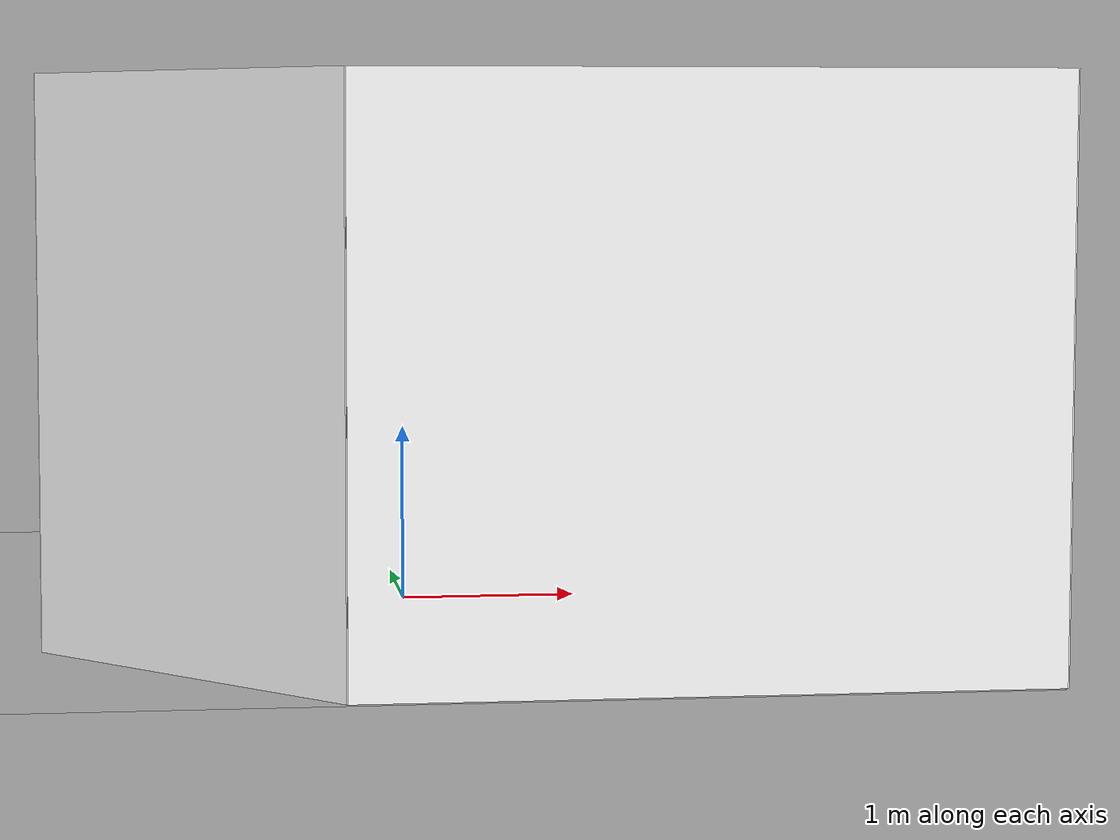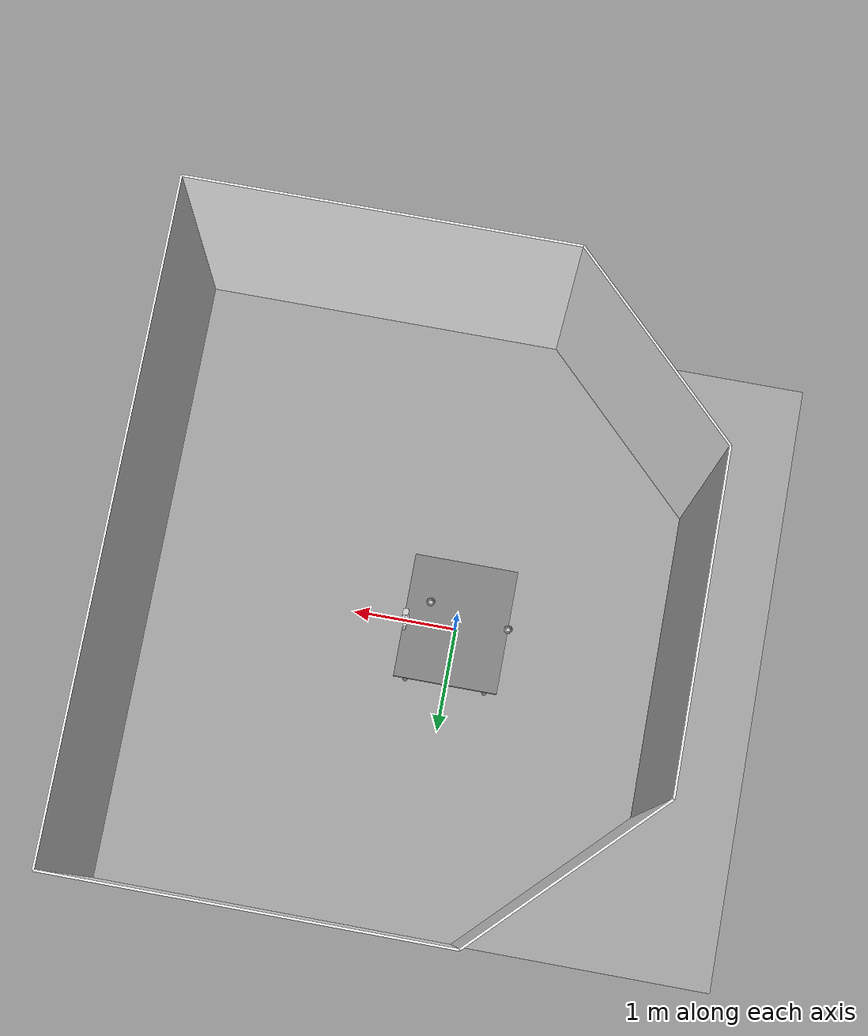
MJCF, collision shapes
<?xml version='1.0' encoding='utf-8'?>
<mujoco model="table_arena">
  <asset>
    <texture builtin="gradient" height="256" rgb1=".9 .9 1." rgb2=".2 .3 .4" type="skybox" width="256" />
    <material name="floorplane_mat" specular="0" shininess="0" reflectance="0.1" rgba="0.8 0.8 0.8 1" />
    <material name="wall_mat" specular="0" shininess="0" reflectance="0" rgba="0.95 0.95 0.95 1" />
    <material name="table_top_mat" specular="0.1" shininess="0.1" reflectance="0.2" rgba="0.7 0.7 0.7 1" />
    <material name="table_leg_mat" specular="0.8" shininess="0.8" reflectance="0.5" rgba="0.4 0.4 0.4 1" />
    <texture file="../libero_assets/stable_scanned_objects/white_bowl/texture.png" name="object_1_tex-model" type="2d" />
    <material name="object_1_model" reflectance="0.5" texrepeat="1 1" texture="object_1_tex-model" texuniform="false" />
    <mesh file="../libero_assets/stable_scanned_objects/white_bowl/visual/model_vis.msh" name="object_1_model_vis" scale="0.5 0.5 0.5" />
    <texture file="../libero_assets/stable_scanned_objects/white_bowl/texture.png" name="object_2_tex-model" type="2d" />
    <material name="object_2_model" reflectance="0.5" texrepeat="1 1" texture="object_2_tex-model" texuniform="false" />
    <mesh file="../libero_assets/stable_scanned_objects/white_bowl/visual/model_vis.msh" name="object_2_model_vis" scale="0.5 0.5 0.5" />
    <texture file="../libero_assets/stable_hope_objects/ketchup/texture_map.png" name="object_3_tex-textured" type="2d" />
    <material name="object_3_textured" reflectance="0.5" texrepeat="1 1" texture="object_3_tex-textured" texuniform="false" />
    <mesh file="../libero_assets/stable_hope_objects/ketchup/visual/textured_vis.msh" name="object_3_textured_vis" scale="0.01 0.01 0.01" />
    <texture file="../libero_assets/stable_hope_objects/ketchup/texture_map.png" name="object_4_tex-textured" type="2d" />
    <material name="object_4_textured" reflectance="0.5" texrepeat="1 1" texture="object_4_tex-textured" texuniform="false" />
    <mesh file="../libero_assets/stable_hope_objects/ketchup/visual/textured_vis.msh" name="object_4_textured_vis" scale="0.01 0.01 0.01" />
  </asset>
  <worldbody>
    <geom condim="3" group="1" material="floorplane_mat" name="floor" pos="0 0 0" size="3 3 .125" type="plane" />
    <geom pos="-1.25 2.25 1.5" quat="0.6532815 0.6532815 0.2705981 0.2705981" size="1.06 1.5 0.01" type="box" conaffinity="0" contype="0" group="1" name="wall_leftcorner_visual" material="wall_mat" />
    <geom pos="-1.25 -2.25 1.5" quat="0.6532815 0.6532815 -0.2705981 -0.2705981" size="1.06 1.5 0.01" type="box" conaffinity="0" contype="0" group="1" name="wall_rightcorner_visual" material="wall_mat" />
    <geom pos="1.25 3 1.5" quat="0.7071 0.7071 0 0" size="1.75 1.5 0.01" type="box" conaffinity="0" contype="0" group="1" name="wall_left_visual" material="wall_mat" />
    <geom pos="1.25 -3 1.5" quat="0.7071 -0.7071 0 0" size="1.75 1.5 0.01" type="box" conaffinity="0" contype="0" group="1" name="wall_right_visual" material="wall_mat" />
    <geom pos="-2 0 1.5" quat="0.5 0.5 0.5 0.5" size="1.5 1.5 0.01" type="box" conaffinity="0" contype="0" group="1" name="wall_rear_visual" material="wall_mat" />
    <geom pos="3 0 1.5" quat="0.5 0.5 -0.5 -0.5" size="3 1.5 0.01" type="box" conaffinity="0" contype="0" group="1" name="wall_front_visual" material="wall_mat" />
    <body name="table" pos="0 0 0.4">
      <geom pos="0 0 0" size="0.5 0.6 0.025" type="box" group="0" name="table_collision" friction="1 0.005 0.0001" />
      <geom name="table_visual" size="0.5 0.6 0.025" type="box" contype="0" conaffinity="0" group="1" material="table_top_mat" />
      <geom name="table_leg1_visual" size="0.025 0.4375" pos="0.4 0.5 -0.4375" type="cylinder" contype="0" conaffinity="0" group="1" material="table_leg_mat" />
      <geom name="table_leg2_visual" size="0.025 0.4375" pos="-0.4 0.5 -0.4375" type="cylinder" contype="0" conaffinity="0" group="1" material="table_leg_mat" />
      <geom name="table_leg3_visual" size="0.025 0.4375" pos="-0.4 -0.5 -0.4375" type="cylinder" contype="0" conaffinity="0" group="1" material="table_leg_mat" />
      <geom name="table_leg4_visual" size="0.025 0.4375" pos="0.4 -0.5 -0.4375" type="cylinder" contype="0" conaffinity="0" group="1" material="table_leg_mat" />
    </body>
    <light pos="1.0 1.0 1.5" dir="-0.2 -0.2 -1" specular="0.3 0.3 0.3" directional="true" castshadow="false" />
    <camera mode="fixed" name="frontview" pos="1.6 0 1.45" quat="0.56 0.43 0.43 0.56" />
    <camera mode="fixed" name="birdview" pos="-0.2 0 3.0" quat="0.7071 0 0 0.7071" />
    <camera mode="fixed" name="agentview" pos="0.5 0 1.35" quat="0.653 0.271 0.271 0.653" />
    <camera mode="fixed" name="sideview" pos="-0.05651774593317116 1.2761224129427358 1.4879572214102434" quat="0.009905065491771751 0.006877963156909582 0.5912228352893879 0.806418094001364" />
    <body name="object_1_instance" pos="-0.5008460274930173 -0.025743497362280918 0.44500000000000006">
      <freejoint />
      <geom solimp="0.998 0.998 0.001" solref="0.001 1" density="100" friction="0.95 0.3 0.1" type="mesh" mesh="object_1_model_vis" conaffinity="0" contype="0" group="1" material="object_1_model" />
      <geom solimp="0.998 0.998 0.001" solref="0.001 1" density="100" friction="0.95 0.3 0.1" type="box" pos="0.00000 0.00009 0.00240" quat="0.70711 0.00000 0.70711 0.00000" size="0.00184 0.01653 0.01728" group="0" rgba="0.8 0.8 0.8 0.3" />
      <geom solimp="0.998 0.998 0.001" solref="0.001 1" density="100" friction="0.95 0.3 0.1" type="box" pos="-0.00007 0.02401 0.00671" quat="0.60990 -0.35780 -0.35780 -0.60990" size="0.00051 0.00709 0.00848" group="0" rgba="0.8 0.8 0.8 0.3" />
      <geom solimp="0.998 0.998 0.001" solref="0.001 1" density="100" friction="0.95 0.3 0.1" type="box" pos="-0.01049 0.02155 0.00685" quat="0.45959 -0.42672 0.26704 0.73169" size="0.00051 0.00709 0.00848" group="0" rgba="0.8 0.8 0.8 0.3" />
      <geom solimp="0.998 0.998 0.001" solref="0.001 1" density="100" friction="0.95 0.3 0.1" type="box" pos="-0.01860 0.01506 0.00697" quat="0.29172 -0.47299 0.16619 0.81459" size="0.00051 0.00709 0.00848" group="0" rgba="0.8 0.8 0.8 0.3" />
      <geom solimp="0.998 0.998 0.001" solref="0.001 1" density="100" friction="0.95 0.3 0.1" type="box" pos="-0.02323 0.00567 0.00703" quat="0.10855 -0.49698 0.05658 0.85908" size="0.00051 0.00709 0.00848" group="0" rgba="0.8 0.8 0.8 0.3" />
      <geom solimp="0.998 0.998 0.001" solref="0.001 1" density="100" friction="0.95 0.3 0.1" type="box" pos="-0.02348 -0.00453 0.00703" quat="0.49761 -0.07722 0.86246 0.05074" size="0.00051 0.00709 0.00848" group="0" rgba="0.8 0.8 0.8 0.3" />
      <geom solimp="0.998 0.998 0.001" solref="0.001 1" density="100" friction="0.95 0.3 0.1" type="box" pos="-0.01923 -0.01422 0.00703" quat="0.47408 -0.26597 0.82406 0.15949" size="0.00051 0.00709 0.00848" group="0" rgba="0.8 0.8 0.8 0.3" />
      <geom solimp="0.998 0.998 0.001" solref="0.001 1" density="100" friction="0.95 0.3 0.1" type="box" pos="-0.01112 -0.02117 0.00703" quat="0.42646 -0.44336 0.74380 0.26138" size="0.00051 0.00709 0.00848" group="0" rgba="0.8 0.8 0.8 0.3" />
      <geom solimp="0.998 0.998 0.001" solref="0.001 1" density="100" friction="0.95 0.3 0.1" type="box" pos="-0.00087 -0.02390 0.00703" quat="0.59728 0.35787 0.34946 -0.62695" size="0.00051 0.00709 0.00848" group="0" rgba="0.8 0.8 0.8 0.3" />
      <geom solimp="0.998 0.998 0.001" solref="0.001 1" density="100" friction="0.95 0.3 0.1" type="box" pos="0.00965 -0.02188 0.00703" quat="0.72249 0.27055 0.42070 -0.47731" size="0.00051 0.00709 0.00848" group="0" rgba="0.8 0.8 0.8 0.3" />
      <geom solimp="0.998 0.998 0.001" solref="0.001 1" density="100" friction="0.95 0.3 0.1" type="box" pos="0.01802 -0.01572 0.00703" quat="0.17267 -0.80894 0.30891 0.46945" size="0.00051 0.00709 0.00848" group="0" rgba="0.8 0.8 0.8 0.3" />
      <geom solimp="0.998 0.998 0.001" solref="0.001 1" density="100" friction="0.95 0.3 0.1" type="box" pos="0.02302 -0.00650 0.00703" quat="0.85700 0.06550 0.49588 -0.12397" size="0.00051 0.00709 0.00848" group="0" rgba="0.8 0.8 0.8 0.3" />
      <geom solimp="0.998 0.998 0.001" solref="0.001 1" density="100" friction="0.95 0.3 0.1" type="box" pos="0.02302 -0.00650 0.00703" quat="0.85700 0.06550 0.49588 -0.12397" size="0.00051 0.00709 0.00848" group="0" rgba="0.8 0.8 0.8 0.3" />
      <geom solimp="0.998 0.998 0.001" solref="0.001 1" density="100" friction="0.95 0.3 0.1" type="box" pos="0.02391 0.00015 0.00703" quat="0.86591 -0.00473 0.50017 -0.00248" size="0.00051 0.00709 0.00848" group="0" rgba="0.8 0.8 0.8 0.3" />
      <geom solimp="0.998 0.998 0.001" solref="0.001 1" density="100" friction="0.95 0.3 0.1" type="box" pos="0.02169 0.01008 0.00703" quat="0.84663 -0.11101 0.48771 0.18175" size="0.00051 0.00709 0.00848" group="0" rgba="0.8 0.8 0.8 0.3" />
      <geom solimp="0.998 0.998 0.001" solref="0.001 1" density="100" friction="0.95 0.3 0.1" type="box" pos="0.01540 0.01830 0.00703" quat="0.21392 0.78724 0.36065 -0.45213" size="0.00051 0.00709 0.00848" group="0" rgba="0.8 0.8 0.8 0.3" />
      <geom solimp="0.998 0.998 0.001" solref="0.001 1" density="100" friction="0.95 0.3 0.1" type="box" pos="0.00826 0.02244 0.00703" quat="0.71324 -0.28870 0.40847 0.49101" size="0.00051 0.00709 0.00848" group="0" rgba="0.8 0.8 0.8 0.3" />
      <geom solimp="0.998 0.998 0.001" solref="0.001 1" density="100" friction="0.95 0.3 0.1" type="box" pos="-0.00007 0.03575 0.02264" quat="0.10134 0.69981 0.69981 -0.10134" size="0.00096 0.00709 0.01266" group="0" rgba="0.8 0.8 0.8 0.3" />
      <geom solimp="0.998 0.998 0.001" solref="0.001 1" density="100" friction="0.95 0.3 0.1" type="box" pos="-0.01308 0.03327 0.02264" quat="0.55811 -0.11836 0.08082 0.81730" size="0.00096 0.00709 0.01266" group="0" rgba="0.8 0.8 0.8 0.3" />
      <geom solimp="0.998 0.998 0.001" solref="0.001 1" density="100" friction="0.95 0.3 0.1" type="box" pos="-0.02408 0.02642 0.02264" quat="0.13104 0.40078 0.90490 -0.05804" size="0.00096 0.00709 0.01266" group="0" rgba="0.8 0.8 0.8 0.3" />
      <geom solimp="0.998 0.998 0.001" solref="0.001 1" density="100" friction="0.95 0.3 0.1" type="box" pos="-0.03197 0.01599 0.02264" quat="0.13945 0.22841 0.96296 -0.03308" size="0.00096 0.00709 0.01266" group="0" rgba="0.8 0.8 0.8 0.3" />
      <geom solimp="0.998 0.998 0.001" solref="0.001 1" density="100" friction="0.95 0.3 0.1" type="box" pos="-0.03558 0.00349 0.02264" quat="0.04942 -0.14314 0.00715 0.98844" size="0.00096 0.00709 0.01266" group="0" rgba="0.8 0.8 0.8 0.3" />
      <geom solimp="0.998 0.998 0.001" solref="0.001 1" density="100" friction="0.95 0.3 0.1" type="box" pos="-0.03456 -0.00914 0.02264" quat="0.14214 -0.12653 0.98155 0.01832" size="0.00096 0.00709 0.01266" group="0" rgba="0.8 0.8 0.8 0.3" />
      <geom solimp="0.998 0.998 0.001" solref="0.001 1" density="100" friction="0.95 0.3 0.1" type="box" pos="-0.02902 -0.02087 0.02264" quat="0.30259 0.13646 0.04382 -0.94228" size="0.00096 0.00709 0.01266" group="0" rgba="0.8 0.8 0.8 0.3" />
      <geom solimp="0.998 0.998 0.001" solref="0.001 1" density="100" friction="0.95 0.3 0.1" type="box" pos="-0.01954 -0.02993 0.02264" quat="0.12610 -0.47028 0.87081 0.06810" size="0.00096 0.00709 0.01266" group="0" rgba="0.8 0.8 0.8 0.3" />
      <geom solimp="0.998 0.998 0.001" solref="0.001 1" density="100" friction="0.95 0.3 0.1" type="box" pos="-0.00766 -0.03492 0.02264" quat="0.61947 0.11177 0.08971 -0.77183" size="0.00096 0.00709 0.01266" group="0" rgba="0.8 0.8 0.8 0.3" />
      <geom solimp="0.998 0.998 0.001" solref="0.001 1" density="100" friction="0.95 0.3 0.1" type="box" pos="0.00530 -0.03535 0.02264" quat="0.74921 0.09364 0.10849 -0.64664" size="0.00096 0.00709 0.01266" group="0" rgba="0.8 0.8 0.8 0.3" />
      <geom solimp="0.998 0.998 0.001" solref="0.001 1" density="100" friction="0.95 0.3 0.1" type="box" pos="0.01764 -0.03109 0.02264" quat="0.07226 -0.85468 0.49898 0.12377" size="0.00096 0.00709 0.01266" group="0" rgba="0.8 0.8 0.8 0.3" />
      <geom solimp="0.998 0.998 0.001" solref="0.001 1" density="100" friction="0.95 0.3 0.1" type="box" pos="0.02755 -0.02278 0.02264" quat="0.93084 0.04868 0.13480 -0.33615" size="0.00096 0.00709 0.01266" group="0" rgba="0.8 0.8 0.8 0.3" />
      <geom solimp="0.998 0.998 0.001" solref="0.001 1" density="100" friction="0.95 0.3 0.1" type="box" pos="0.03395 -0.01119 0.02264" quat="0.97700 0.02287 0.14148 -0.15791" size="0.00096 0.00709 0.01266" group="0" rgba="0.8 0.8 0.8 0.3" />
      <geom solimp="0.998 0.998 0.001" solref="0.001 1" density="100" friction="0.95 0.3 0.1" type="box" pos="0.03572 0.00140 0.02264" quat="0.00267 0.98951 0.01840 -0.14329" size="0.00096 0.00709 0.01266" group="0" rgba="0.8 0.8 0.8 0.3" />
      <geom solimp="0.998 0.998 0.001" solref="0.001 1" density="100" friction="0.95 0.3 0.1" type="box" pos="0.03572 0.00140 0.02264" quat="0.00267 0.98951 0.01840 -0.14329" size="0.00096 0.00709 0.01266" group="0" rgba="0.8 0.8 0.8 0.3" />
      <geom solimp="0.998 0.998 0.001" solref="0.001 1" density="100" friction="0.95 0.3 0.1" type="box" pos="0.03293 0.01390 0.02264" quat="0.02829 0.97021 0.19533 -0.14050" size="0.00096 0.00709 0.01266" group="0" rgba="0.8 0.8 0.8 0.3" />
      <geom solimp="0.998 0.998 0.001" solref="0.001 1" density="100" friction="0.95 0.3 0.1" type="box" pos="0.02592 0.02462 0.02264" quat="0.13315 0.36606 -0.91949 0.05301" size="0.00096 0.00709 0.01266" group="0" rgba="0.8 0.8 0.8 0.3" />
      <geom solimp="0.998 0.998 0.001" solref="0.001 1" density="100" friction="0.95 0.3 0.1" type="box" pos="0.01569 0.03212 0.02264" quat="0.83995 -0.07579 0.12163 0.52340" size="0.00096 0.00709 0.01266" group="0" rgba="0.8 0.8 0.8 0.3" />
      <geom solimp="0.998 0.998 0.001" solref="0.001 1" density="100" friction="0.95 0.3 0.1" type="box" pos="0.00801 0.03484 0.02264" quat="0.08915 0.77490 0.61562 -0.11222" size="0.00094 0.00337 0.01264" group="0" rgba="0.8 0.8 0.8 0.3" />
    </body>
    <body name="object_2_instance" pos="0.27445589652834834 -0.15642902036864503 0.44500000000000006">
      <freejoint />
      <geom solimp="0.998 0.998 0.001" solref="0.001 1" density="100" friction="0.95 0.3 0.1" type="mesh" mesh="object_2_model_vis" conaffinity="0" contype="0" group="1" material="object_2_model" />
      <geom solimp="0.998 0.998 0.001" solref="0.001 1" density="100" friction="0.95 0.3 0.1" type="box" pos="0.00000 0.00009 0.00240" quat="0.70711 0.00000 0.70711 0.00000" size="0.00184 0.01653 0.01728" group="0" rgba="0.8 0.8 0.8 0.3" />
      <geom solimp="0.998 0.998 0.001" solref="0.001 1" density="100" friction="0.95 0.3 0.1" type="box" pos="-0.00007 0.02401 0.00671" quat="0.60990 -0.35780 -0.35780 -0.60990" size="0.00051 0.00709 0.00848" group="0" rgba="0.8 0.8 0.8 0.3" />
      <geom solimp="0.998 0.998 0.001" solref="0.001 1" density="100" friction="0.95 0.3 0.1" type="box" pos="-0.01049 0.02155 0.00685" quat="0.45959 -0.42672 0.26704 0.73169" size="0.00051 0.00709 0.00848" group="0" rgba="0.8 0.8 0.8 0.3" />
      <geom solimp="0.998 0.998 0.001" solref="0.001 1" density="100" friction="0.95 0.3 0.1" type="box" pos="-0.01860 0.01506 0.00697" quat="0.29172 -0.47299 0.16619 0.81459" size="0.00051 0.00709 0.00848" group="0" rgba="0.8 0.8 0.8 0.3" />
      <geom solimp="0.998 0.998 0.001" solref="0.001 1" density="100" friction="0.95 0.3 0.1" type="box" pos="-0.02323 0.00567 0.00703" quat="0.10855 -0.49698 0.05658 0.85908" size="0.00051 0.00709 0.00848" group="0" rgba="0.8 0.8 0.8 0.3" />
      <geom solimp="0.998 0.998 0.001" solref="0.001 1" density="100" friction="0.95 0.3 0.1" type="box" pos="-0.02348 -0.00453 0.00703" quat="0.49761 -0.07722 0.86246 0.05074" size="0.00051 0.00709 0.00848" group="0" rgba="0.8 0.8 0.8 0.3" />
      <geom solimp="0.998 0.998 0.001" solref="0.001 1" density="100" friction="0.95 0.3 0.1" type="box" pos="-0.01923 -0.01422 0.00703" quat="0.47408 -0.26597 0.82406 0.15949" size="0.00051 0.00709 0.00848" group="0" rgba="0.8 0.8 0.8 0.3" />
      <geom solimp="0.998 0.998 0.001" solref="0.001 1" density="100" friction="0.95 0.3 0.1" type="box" pos="-0.01112 -0.02117 0.00703" quat="0.42646 -0.44336 0.74380 0.26138" size="0.00051 0.00709 0.00848" group="0" rgba="0.8 0.8 0.8 0.3" />
      <geom solimp="0.998 0.998 0.001" solref="0.001 1" density="100" friction="0.95 0.3 0.1" type="box" pos="-0.00087 -0.02390 0.00703" quat="0.59728 0.35787 0.34946 -0.62695" size="0.00051 0.00709 0.00848" group="0" rgba="0.8 0.8 0.8 0.3" />
      <geom solimp="0.998 0.998 0.001" solref="0.001 1" density="100" friction="0.95 0.3 0.1" type="box" pos="0.00965 -0.02188 0.00703" quat="0.72249 0.27055 0.42070 -0.47731" size="0.00051 0.00709 0.00848" group="0" rgba="0.8 0.8 0.8 0.3" />
      <geom solimp="0.998 0.998 0.001" solref="0.001 1" density="100" friction="0.95 0.3 0.1" type="box" pos="0.01802 -0.01572 0.00703" quat="0.17267 -0.80894 0.30891 0.46945" size="0.00051 0.00709 0.00848" group="0" rgba="0.8 0.8 0.8 0.3" />
      <geom solimp="0.998 0.998 0.001" solref="0.001 1" density="100" friction="0.95 0.3 0.1" type="box" pos="0.02302 -0.00650 0.00703" quat="0.85700 0.06550 0.49588 -0.12397" size="0.00051 0.00709 0.00848" group="0" rgba="0.8 0.8 0.8 0.3" />
      <geom solimp="0.998 0.998 0.001" solref="0.001 1" density="100" friction="0.95 0.3 0.1" type="box" pos="0.02302 -0.00650 0.00703" quat="0.85700 0.06550 0.49588 -0.12397" size="0.00051 0.00709 0.00848" group="0" rgba="0.8 0.8 0.8 0.3" />
      <geom solimp="0.998 0.998 0.001" solref="0.001 1" density="100" friction="0.95 0.3 0.1" type="box" pos="0.02391 0.00015 0.00703" quat="0.86591 -0.00473 0.50017 -0.00248" size="0.00051 0.00709 0.00848" group="0" rgba="0.8 0.8 0.8 0.3" />
      <geom solimp="0.998 0.998 0.001" solref="0.001 1" density="100" friction="0.95 0.3 0.1" type="box" pos="0.02169 0.01008 0.00703" quat="0.84663 -0.11101 0.48771 0.18175" size="0.00051 0.00709 0.00848" group="0" rgba="0.8 0.8 0.8 0.3" />
      <geom solimp="0.998 0.998 0.001" solref="0.001 1" density="100" friction="0.95 0.3 0.1" type="box" pos="0.01540 0.01830 0.00703" quat="0.21392 0.78724 0.36065 -0.45213" size="0.00051 0.00709 0.00848" group="0" rgba="0.8 0.8 0.8 0.3" />
      <geom solimp="0.998 0.998 0.001" solref="0.001 1" density="100" friction="0.95 0.3 0.1" type="box" pos="0.00826 0.02244 0.00703" quat="0.71324 -0.28870 0.40847 0.49101" size="0.00051 0.00709 0.00848" group="0" rgba="0.8 0.8 0.8 0.3" />
      <geom solimp="0.998 0.998 0.001" solref="0.001 1" density="100" friction="0.95 0.3 0.1" type="box" pos="-0.00007 0.03575 0.02264" quat="0.10134 0.69981 0.69981 -0.10134" size="0.00096 0.00709 0.01266" group="0" rgba="0.8 0.8 0.8 0.3" />
      <geom solimp="0.998 0.998 0.001" solref="0.001 1" density="100" friction="0.95 0.3 0.1" type="box" pos="-0.01308 0.03327 0.02264" quat="0.55811 -0.11836 0.08082 0.81730" size="0.00096 0.00709 0.01266" group="0" rgba="0.8 0.8 0.8 0.3" />
      <geom solimp="0.998 0.998 0.001" solref="0.001 1" density="100" friction="0.95 0.3 0.1" type="box" pos="-0.02408 0.02642 0.02264" quat="0.13104 0.40078 0.90490 -0.05804" size="0.00096 0.00709 0.01266" group="0" rgba="0.8 0.8 0.8 0.3" />
      <geom solimp="0.998 0.998 0.001" solref="0.001 1" density="100" friction="0.95 0.3 0.1" type="box" pos="-0.03197 0.01599 0.02264" quat="0.13945 0.22841 0.96296 -0.03308" size="0.00096 0.00709 0.01266" group="0" rgba="0.8 0.8 0.8 0.3" />
      <geom solimp="0.998 0.998 0.001" solref="0.001 1" density="100" friction="0.95 0.3 0.1" type="box" pos="-0.03558 0.00349 0.02264" quat="0.04942 -0.14314 0.00715 0.98844" size="0.00096 0.00709 0.01266" group="0" rgba="0.8 0.8 0.8 0.3" />
      <geom solimp="0.998 0.998 0.001" solref="0.001 1" density="100" friction="0.95 0.3 0.1" type="box" pos="-0.03456 -0.00914 0.02264" quat="0.14214 -0.12653 0.98155 0.01832" size="0.00096 0.00709 0.01266" group="0" rgba="0.8 0.8 0.8 0.3" />
      <geom solimp="0.998 0.998 0.001" solref="0.001 1" density="100" friction="0.95 0.3 0.1" type="box" pos="-0.02902 -0.02087 0.02264" quat="0.30259 0.13646 0.04382 -0.94228" size="0.00096 0.00709 0.01266" group="0" rgba="0.8 0.8 0.8 0.3" />
      <geom solimp="0.998 0.998 0.001" solref="0.001 1" density="100" friction="0.95 0.3 0.1" type="box" pos="-0.01954 -0.02993 0.02264" quat="0.12610 -0.47028 0.87081 0.06810" size="0.00096 0.00709 0.01266" group="0" rgba="0.8 0.8 0.8 0.3" />
      <geom solimp="0.998 0.998 0.001" solref="0.001 1" density="100" friction="0.95 0.3 0.1" type="box" pos="-0.00766 -0.03492 0.02264" quat="0.61947 0.11177 0.08971 -0.77183" size="0.00096 0.00709 0.01266" group="0" rgba="0.8 0.8 0.8 0.3" />
      <geom solimp="0.998 0.998 0.001" solref="0.001 1" density="100" friction="0.95 0.3 0.1" type="box" pos="0.00530 -0.03535 0.02264" quat="0.74921 0.09364 0.10849 -0.64664" size="0.00096 0.00709 0.01266" group="0" rgba="0.8 0.8 0.8 0.3" />
      <geom solimp="0.998 0.998 0.001" solref="0.001 1" density="100" friction="0.95 0.3 0.1" type="box" pos="0.01764 -0.03109 0.02264" quat="0.07226 -0.85468 0.49898 0.12377" size="0.00096 0.00709 0.01266" group="0" rgba="0.8 0.8 0.8 0.3" />
      <geom solimp="0.998 0.998 0.001" solref="0.001 1" density="100" friction="0.95 0.3 0.1" type="box" pos="0.02755 -0.02278 0.02264" quat="0.93084 0.04868 0.13480 -0.33615" size="0.00096 0.00709 0.01266" group="0" rgba="0.8 0.8 0.8 0.3" />
      <geom solimp="0.998 0.998 0.001" solref="0.001 1" density="100" friction="0.95 0.3 0.1" type="box" pos="0.03395 -0.01119 0.02264" quat="0.97700 0.02287 0.14148 -0.15791" size="0.00096 0.00709 0.01266" group="0" rgba="0.8 0.8 0.8 0.3" />
      <geom solimp="0.998 0.998 0.001" solref="0.001 1" density="100" friction="0.95 0.3 0.1" type="box" pos="0.03572 0.00140 0.02264" quat="0.00267 0.98951 0.01840 -0.14329" size="0.00096 0.00709 0.01266" group="0" rgba="0.8 0.8 0.8 0.3" />
      <geom solimp="0.998 0.998 0.001" solref="0.001 1" density="100" friction="0.95 0.3 0.1" type="box" pos="0.03572 0.00140 0.02264" quat="0.00267 0.98951 0.01840 -0.14329" size="0.00096 0.00709 0.01266" group="0" rgba="0.8 0.8 0.8 0.3" />
      <geom solimp="0.998 0.998 0.001" solref="0.001 1" density="100" friction="0.95 0.3 0.1" type="box" pos="0.03293 0.01390 0.02264" quat="0.02829 0.97021 0.19533 -0.14050" size="0.00096 0.00709 0.01266" group="0" rgba="0.8 0.8 0.8 0.3" />
      <geom solimp="0.998 0.998 0.001" solref="0.001 1" density="100" friction="0.95 0.3 0.1" type="box" pos="0.02592 0.02462 0.02264" quat="0.13315 0.36606 -0.91949 0.05301" size="0.00096 0.00709 0.01266" group="0" rgba="0.8 0.8 0.8 0.3" />
      <geom solimp="0.998 0.998 0.001" solref="0.001 1" density="100" friction="0.95 0.3 0.1" type="box" pos="0.01569 0.03212 0.02264" quat="0.83995 -0.07579 0.12163 0.52340" size="0.00096 0.00709 0.01266" group="0" rgba="0.8 0.8 0.8 0.3" />
      <geom solimp="0.998 0.998 0.001" solref="0.001 1" density="100" friction="0.95 0.3 0.1" type="box" pos="0.00801 0.03484 0.02264" quat="0.08915 0.77490 0.61562 -0.11222" size="0.00094 0.00337 0.01264" group="0" rgba="0.8 0.8 0.8 0.3" />
    </body>
    <body name="object_3_instance" pos="0.49247769598956026 0.020816559850205654 0.44500000000000006">
      <freejoint />
      <geom solimp="0.998 0.998 0.001" solref="0.001 1" density="100" friction="0.95 0.3 0.1" type="mesh" mesh="object_3_textured_vis" conaffinity="0" contype="0" group="1" material="object_3_textured" />
      <geom solimp="0.998 0.998 0.001" solref="0.001 1" density="100" friction="0.95 0.3 0.1" type="box" pos="0.00045 -0.03935 0.00079" quat="0.50000 0.50000 0.50000 -0.50000" size="0.01695 0.02811 0.03307" group="0" rgba="0.8 0.8 0.8 0.3" />
      <geom solimp="0.998 0.998 0.001" solref="0.001 1" density="100" friction="0.95 0.3 0.1" type="box" pos="0.00045 0.00369 0.00079" quat="0.50000 0.50000 -0.50000 -0.50000" size="0.01126 0.01834 0.02393" group="0" rgba="0.8 0.8 0.8 0.3" />
      <geom solimp="0.998 0.998 0.001" solref="0.001 1" density="100" friction="0.95 0.3 0.1" type="box" pos="0.00045 0.02513 0.00079" quat="0.50000 0.50000 -0.50000 -0.50000" size="0.01126 0.01834 0.01869" group="0" rgba="0.8 0.8 0.8 0.3" />
      <geom solimp="0.998 0.998 0.001" solref="0.001 1" density="100" friction="0.95 0.3 0.1" type="box" pos="0.00045 0.05471 0.00079" quat="0.00000 -0.00000 0.70711 -0.70711" size="0.01032 0.01414 0.01848" group="0" rgba="0.8 0.8 0.8 0.3" />
      <geom solimp="0.998 0.998 0.001" solref="0.001 1" density="100" friction="0.95 0.3 0.1" type="box" pos="0.01368 0.05471 0.00079" quat="0.70711 0.70711 0.00000 -0.00000" size="0.00292 0.00405 0.01848" group="0" rgba="0.8 0.8 0.8 0.3" />
      <geom solimp="0.998 0.998 0.001" solref="0.001 1" density="100" friction="0.95 0.3 0.1" type="box" pos="-0.01322 0.05471 0.00079" quat="0.00000 0.00000 0.70711 0.70711" size="0.00315 0.00460 0.01848" group="0" rgba="0.8 0.8 0.8 0.3" />
      <geom solimp="0.998 0.998 0.001" solref="0.001 1" density="100" friction="0.95 0.3 0.1" type="box" pos="0.00008 0.05471 -0.01554" quat="0.50000 -0.50000 0.50000 0.50000" size="0.00209 0.00685 0.01848" group="0" rgba="0.8 0.8 0.8 0.3" />
      <geom solimp="0.998 0.998 0.001" solref="0.001 1" density="100" friction="0.95 0.3 0.1" type="box" pos="0.00002 0.05471 0.01682" quat="0.50000 -0.50000 0.50000 0.50000" size="0.00186 0.00740 0.01848" group="0" rgba="0.8 0.8 0.8 0.3" />
      <geom solimp="0.998 0.998 0.001" solref="0.001 1" density="100" friction="0.95 0.3 0.1" type="box" pos="0.01333 0.05471 0.00901" quat="0.70711 0.70711 0.00000 -0.00000" size="0.00259 0.00413 0.01848" group="0" rgba="0.8 0.8 0.8 0.3" />
      <geom solimp="0.998 0.998 0.001" solref="0.001 1" density="100" friction="0.95 0.3 0.1" type="box" pos="0.01333 0.05471 -0.00727" quat="0.00000 0.00000 0.70711 0.70711" size="0.00259 0.00392 0.01848" group="0" rgba="0.8 0.8 0.8 0.3" />
      <geom solimp="0.998 0.998 0.001" solref="0.001 1" density="100" friction="0.95 0.3 0.1" type="box" pos="-0.01254 0.05471 -0.00799" quat="0.00000 0.00000 0.70711 0.70711" size="0.00259 0.00405 0.01848" group="0" rgba="0.8 0.8 0.8 0.3" />
      <geom solimp="0.998 0.998 0.001" solref="0.001 1" density="100" friction="0.95 0.3 0.1" type="box" pos="-0.01259 0.05471 0.00929" quat="0.00000 0.00000 0.70711 0.70711" size="0.00259 0.00380 0.01848" group="0" rgba="0.8 0.8 0.8 0.3" />
    </body>
    <body name="object_4_instance" pos="0.48158555389930063 0.07942052278306176 0.44500000000000006">
      <freejoint />
      <geom solimp="0.998 0.998 0.001" solref="0.001 1" density="100" friction="0.95 0.3 0.1" type="mesh" mesh="object_4_textured_vis" conaffinity="0" contype="0" group="1" material="object_4_textured" />
      <geom solimp="0.998 0.998 0.001" solref="0.001 1" density="100" friction="0.95 0.3 0.1" type="box" pos="0.00045 -0.03935 0.00079" quat="0.50000 0.50000 0.50000 -0.50000" size="0.01695 0.02811 0.03307" group="0" rgba="0.8 0.8 0.8 0.3" />
      <geom solimp="0.998 0.998 0.001" solref="0.001 1" density="100" friction="0.95 0.3 0.1" type="box" pos="0.00045 0.00369 0.00079" quat="0.50000 0.50000 -0.50000 -0.50000" size="0.01126 0.01834 0.02393" group="0" rgba="0.8 0.8 0.8 0.3" />
      <geom solimp="0.998 0.998 0.001" solref="0.001 1" density="100" friction="0.95 0.3 0.1" type="box" pos="0.00045 0.02513 0.00079" quat="0.50000 0.50000 -0.50000 -0.50000" size="0.01126 0.01834 0.01869" group="0" rgba="0.8 0.8 0.8 0.3" />
      <geom solimp="0.998 0.998 0.001" solref="0.001 1" density="100" friction="0.95 0.3 0.1" type="box" pos="0.00045 0.05471 0.00079" quat="0.00000 -0.00000 0.70711 -0.70711" size="0.01032 0.01414 0.01848" group="0" rgba="0.8 0.8 0.8 0.3" />
      <geom solimp="0.998 0.998 0.001" solref="0.001 1" density="100" friction="0.95 0.3 0.1" type="box" pos="0.01368 0.05471 0.00079" quat="0.70711 0.70711 0.00000 -0.00000" size="0.00292 0.00405 0.01848" group="0" rgba="0.8 0.8 0.8 0.3" />
      <geom solimp="0.998 0.998 0.001" solref="0.001 1" density="100" friction="0.95 0.3 0.1" type="box" pos="-0.01322 0.05471 0.00079" quat="0.00000 0.00000 0.70711 0.70711" size="0.00315 0.00460 0.01848" group="0" rgba="0.8 0.8 0.8 0.3" />
      <geom solimp="0.998 0.998 0.001" solref="0.001 1" density="100" friction="0.95 0.3 0.1" type="box" pos="0.00008 0.05471 -0.01554" quat="0.50000 -0.50000 0.50000 0.50000" size="0.00209 0.00685 0.01848" group="0" rgba="0.8 0.8 0.8 0.3" />
      <geom solimp="0.998 0.998 0.001" solref="0.001 1" density="100" friction="0.95 0.3 0.1" type="box" pos="0.00002 0.05471 0.01682" quat="0.50000 -0.50000 0.50000 0.50000" size="0.00186 0.00740 0.01848" group="0" rgba="0.8 0.8 0.8 0.3" />
      <geom solimp="0.998 0.998 0.001" solref="0.001 1" density="100" friction="0.95 0.3 0.1" type="box" pos="0.01333 0.05471 0.00901" quat="0.70711 0.70711 0.00000 -0.00000" size="0.00259 0.00413 0.01848" group="0" rgba="0.8 0.8 0.8 0.3" />
      <geom solimp="0.998 0.998 0.001" solref="0.001 1" density="100" friction="0.95 0.3 0.1" type="box" pos="0.01333 0.05471 -0.00727" quat="0.00000 0.00000 0.70711 0.70711" size="0.00259 0.00392 0.01848" group="0" rgba="0.8 0.8 0.8 0.3" />
      <geom solimp="0.998 0.998 0.001" solref="0.001 1" density="100" friction="0.95 0.3 0.1" type="box" pos="-0.01254 0.05471 -0.00799" quat="0.00000 0.00000 0.70711 0.70711" size="0.00259 0.00405 0.01848" group="0" rgba="0.8 0.8 0.8 0.3" />
      <geom solimp="0.998 0.998 0.001" solref="0.001 1" density="100" friction="0.95 0.3 0.1" type="box" pos="-0.01259 0.05471 0.00929" quat="0.00000 0.00000 0.70711 0.70711" size="0.00259 0.00380 0.01848" group="0" rgba="0.8 0.8 0.8 0.3" />
    </body>
  </worldbody>
</mujoco>
